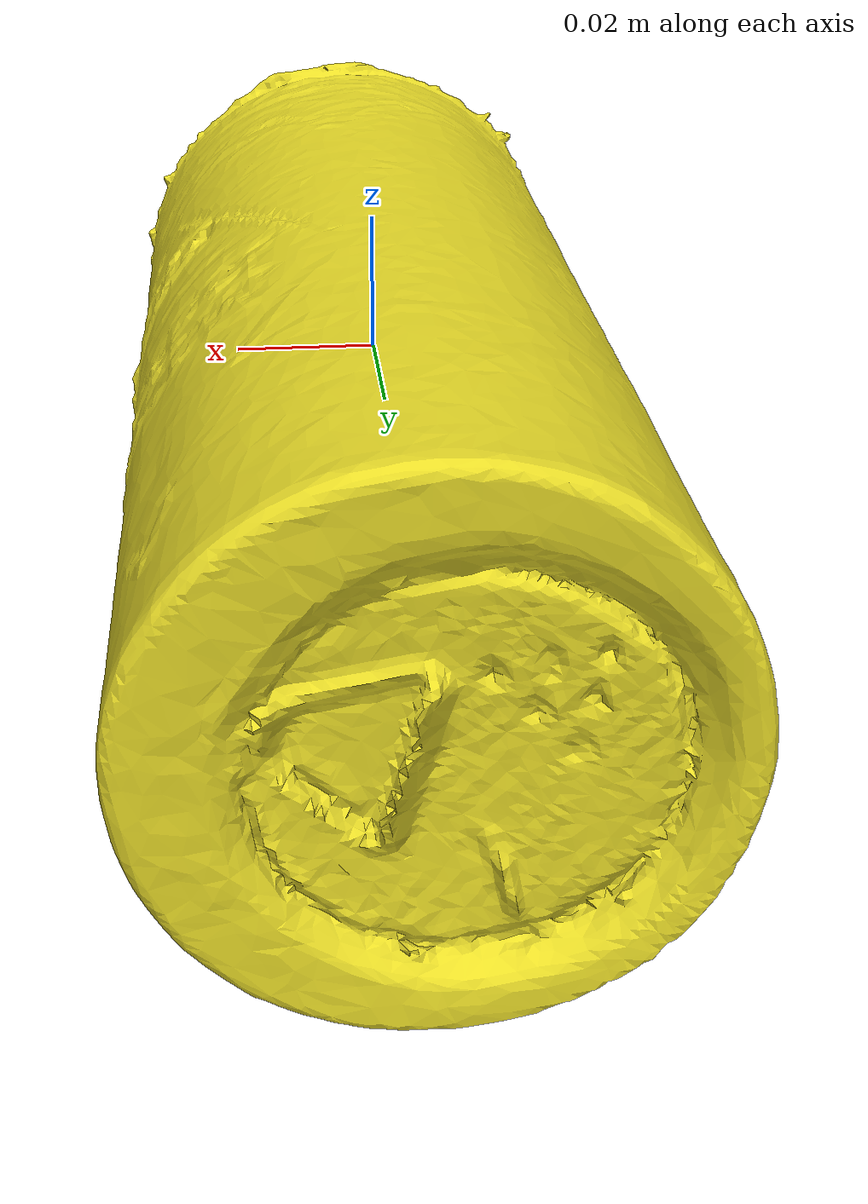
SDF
<?xml version='1.0'?>
<sdf version="1.4">
  <model name="YellowSaltCylinder">
    <static>false</static>
    <link name="link">
      <inertial>
        <pose>0.001936663464371831 0.034176264339621065 0.0008906241520847457 1.564165916192673 0.2481148578939768 3.1336570576867797</pose>
        <mass>0.049759310610133944</mass>
        <inertia>
          <ixx>0.00010562459656722226</ixx>
          <ixy>-5.716504013107129e-21</ixy>
          <ixz>-1.0806601792770737e-21</ixz>
          <iyy>0.00010536309426664565</iyy>
          <iyz>-4.21641374386864e-21</iyz>
          <izz>2.6330646223467635e-05</izz>
        </inertia>
      </inertial>
      <collision name="collision">
        <geometry>
          <mesh>
            <!-- Use a downsampled mesh for collisions -->
            <uri>model:///YellowSaltCylinder/YellowSaltCylinder_250_collision.obj</uri>
	        </mesh>
        </geometry>
        <surface>
      </surface>
      </collision>
      <visual name="visual">
        <geometry>
          <mesh>
            <uri>model:///YellowSaltCylinder/YellowSaltCylinder_25k_tex.obj</uri>
	        </mesh>
        </geometry>
        <material>
          <script>
            <uri>model:///YellowSaltCylinder/YellowSaltCylinder.material</uri>
            <name>YellowSaltCylinder</name>
          </script>
        </material>
      </visual>
    </link>
  </model>
</sdf>
